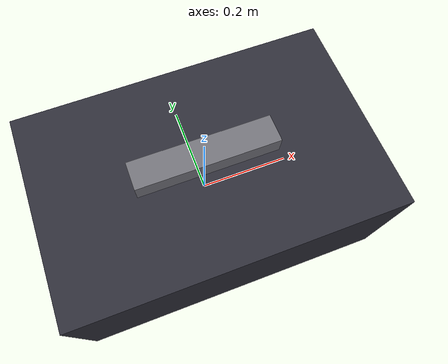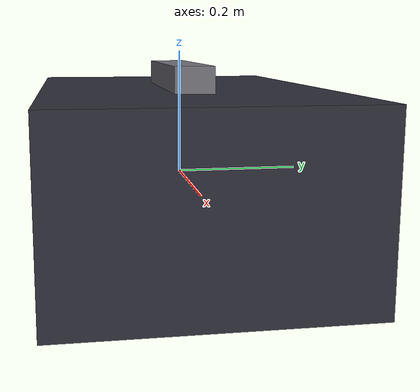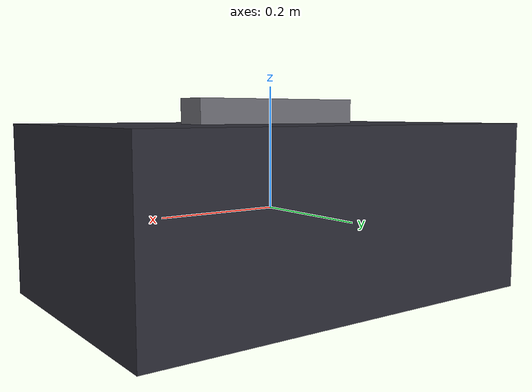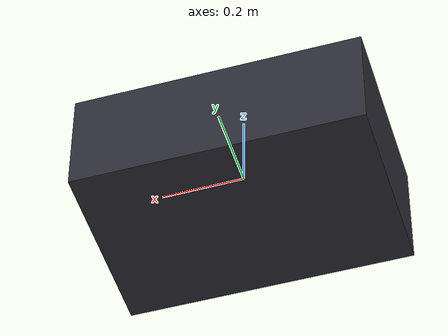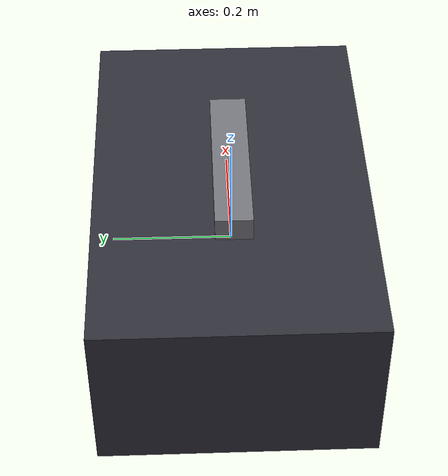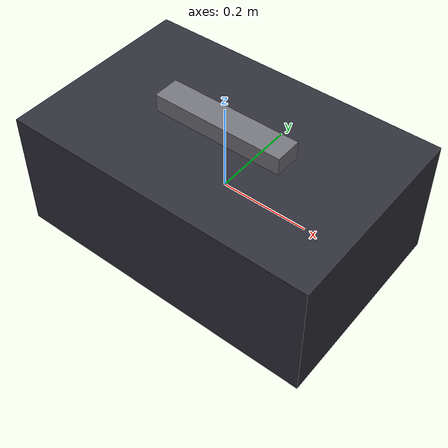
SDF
<?xml version="1.0"?>
<sdf version="1.6">
  <!-- Medium checked bag: 70 x 45 x 28 cm (W x D x H), 15 kg -->
  <model name="suitcase_standard">
    <link name="suitcase_link">
      <inertial>
        <mass>15.0</mass>
        <inertia>
          <ixx>0.268</ixx><ixy>0</ixy><ixz>0</ixz>
          <iyy>0.693</iyy><iyz>0</iyz>
          <izz>0.911</izz>
        </inertia>
      </inertial>
      <visual name="body_visual">
        <geometry><box><size>0.70 0.45 0.28</size></box></geometry>
        <material>
          <ambient>0.12 0.12 0.14 1</ambient>
          <diffuse>0.18 0.18 0.22 1</diffuse>
        </material>
      </visual>
      <collision name="body_collision">
        <geometry><box><size>0.70 0.45 0.28</size></box></geometry>
        <surface>
          <friction><ode><mu>0.6</mu><mu2>0.6</mu2></ode></friction>
        </surface>
      </collision>
      <!-- Handle ridge -->
      <visual name="handle_visual">
        <pose>0 0 0.16 0 0 0</pose>
        <geometry><box><size>0.30 0.06 0.04</size></box></geometry>
        <material>
          <ambient>0.3 0.3 0.32 1</ambient>
          <diffuse>0.45 0.45 0.48 1</diffuse>
        </material>
      </visual>
    </link>
  </model>
</sdf>
